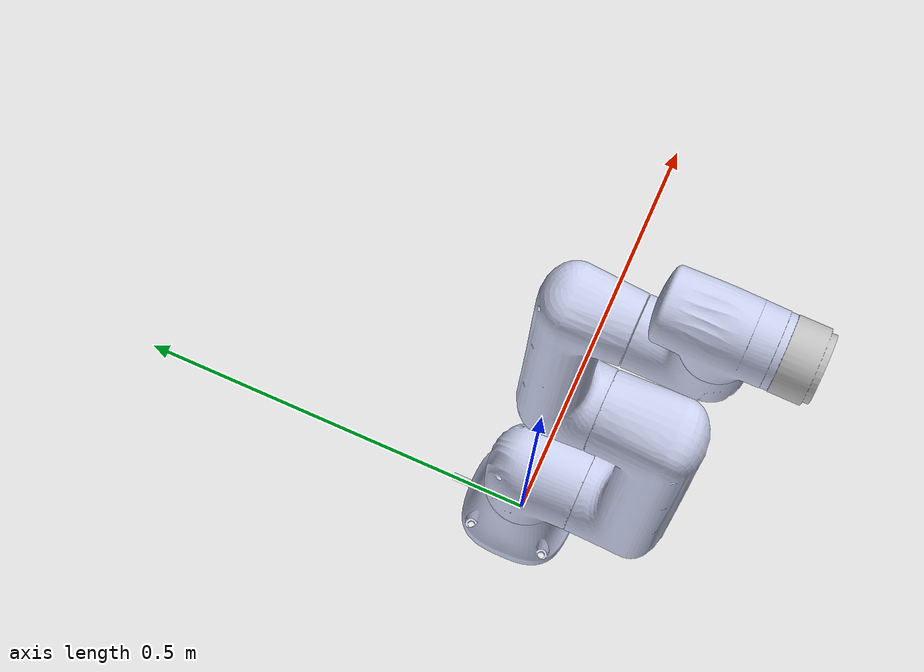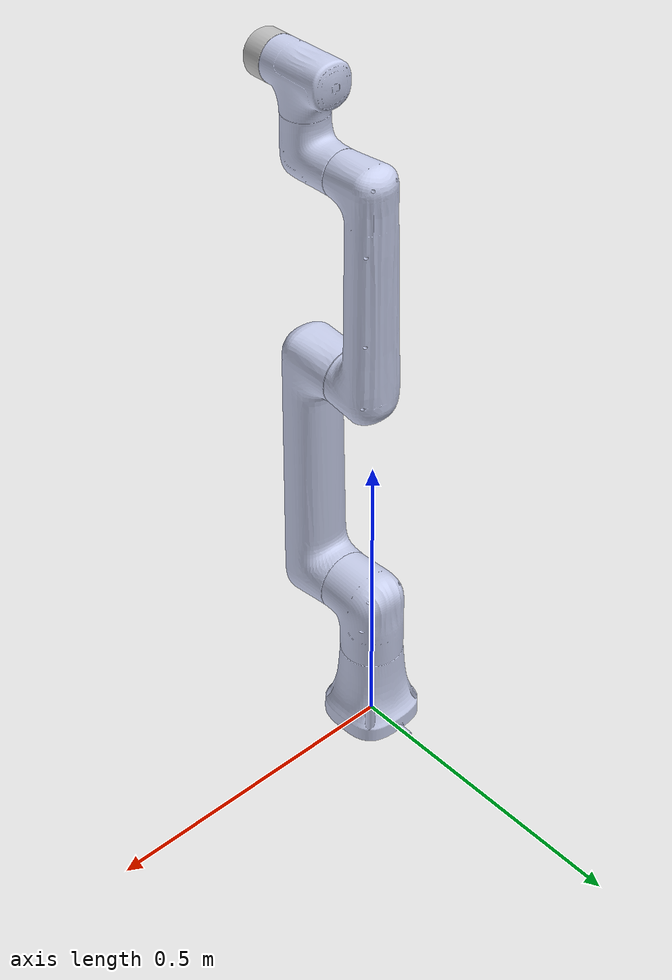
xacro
<?xml version="1.0"?>
<robot
  name="nova5_robot" xmlns:xacro="http://www.ros.org/wiki/xacro" >
  <link name="dummy_link"/>
  <link
    name="base_link">
    <inertial>
      <origin
        xyz="6.56698714338847E-06 2.73052159273858E-06 0.0698223124889706"
        rpy="0 0 0" />
      <mass
        value="1.3106443915978" />
      <inertia
        ixx="0.00308109148952278"
        ixy="-4.0369958400766E-08"
        ixz="5.2607663395944E-07"
        iyy="0.00309758743296662"
        iyz="-6.37484696538659E-09"
        izz="0.00232835367593981" />
    </inertial>
    <visual>
      <origin
        xyz="0 0 0"
        rpy="0 0 0" />
      <geometry>
        <mesh
          filename="file://$(find cra_description)/meshes/nova5/base_link.STL" />
      </geometry>
      <material
        name="">
        <color
          rgba="0.792156862745098 0.819607843137255 0.933333333333333 1" />
      </material>
    </visual>
    <collision>
      <origin
        xyz="0 0 0"
        rpy="0 0 0" />
      <geometry>
        <mesh
          filename="file://$(find cra_description)/meshes/nova5/base_link.STL" />
      </geometry>
    </collision>
  </link>
  <link  name="world"/>
  <joint name="world_joint" type="fixed">
    <parent link="world" />
    <child  link="dummy_link" />
  </joint>
  <joint
    name="dummy_joint"
    type="fixed">
    <parent
      link="dummy_link" />
    <child
      link="base_link" />
  </joint>
  <link
    name="Link1">
    <inertial>
      <origin
        xyz="9.18642704220017E-06 -0.021770784235076 -0.0261833991373472"
        rpy="0 0 0" />
      <mass
        value="1.08090940330212" />
      <inertia
        ixx="0.00265963193119309"
        ixy="1.85196348994647E-07"
        ixz="-3.27720040926316E-07"
        iyy="0.00247342331575097"
        iyz="0.000661331129337329"
        izz="0.00164737186015792" />
    </inertial>
    <visual>
      <origin
        xyz="0 0 0"
        rpy="0 0 0" />
      <geometry>
        <mesh
          filename="file://$(find cra_description)/meshes/nova5/Link1.STL" />
      </geometry>
      <material
        name="">
        <color
          rgba="0.792156862745098 0.819607843137255 0.933333333333333 1" />
      </material>
    </visual>
    <collision>
      <origin
        xyz="0 0 0"
        rpy="0 0 0" />
      <geometry>
        <mesh
          filename="file://$(find cra_description)/meshes/nova5/Link1.STL" />
      </geometry>
    </collision>
  </link>
  <joint
    name="joint1"
    type="revolute">
    <origin
      xyz="0 0 0.240000000000178"
      rpy="0 0 0" />
    <parent
      link="base_link" />
    <child
      link="Link1" />
    <axis
      xyz="0 0 0.999999999999855" />
    <limit
      lower="-6.28"
      upper="6.28"
      effort="300"
      velocity="3.14" />
  </joint>
  <link
    name="Link2">
    <inertial>
      <origin
        xyz="-0.19933810729628 -0.00696463483971123 0.109208661556353"
        rpy="0 0 0" />
      <mass
        value="2.54585370113969" />
      <inertia
        ixx="0.00285193319464959"
        ixy="-0.00212784400881843"
        ixz="-0.00109906472415148"
        iyy="0.0636767872390402"
        iyz="-3.83872488712299E-05"
        izz="0.0643005121111712" />
    </inertial>
    <visual>
      <origin
        xyz="0 0 0"
        rpy="0 0 0" />
      <geometry>
        <mesh
          filename="file://$(find cra_description)/meshes/nova5/Link2.STL" />
      </geometry>
      <material
        name="">
        <color
          rgba="0.792156862745098 0.819607843137255 0.933333333333333 1" />
      </material>
    </visual>
    <collision>
      <origin
        xyz="0 0 0"
        rpy="0 0 0" />
      <geometry>
        <mesh
          filename="file://$(find cra_description)/meshes/nova5/Link2.STL" />
      </geometry>
    </collision>
  </link>
  <joint
    name="joint2"
    type="revolute">
    <origin
      xyz="0 0 0"
      rpy="-1.57080287682252 1.53586622836832 3.14159265358979" />
    <parent
      link="Link1" />
    <child
      link="Link2" />
    <axis
      xyz="0 0 1" />
    <limit
      lower="-3.14"
      upper="3.14"
      effort="300"
      velocity="3.14" />
  </joint>
  <link
    name="Link3">
    <inertial>
      <origin
        xyz="-0.152357289724291 -0.0053571688729055 0.0198991511385547"
        rpy="0 0 0" />
      <mass
        value="1.40745649848125" />
      <inertia
        ixx="0.00100801309674517"
        ixy="-0.00077546601599374"
        ixz="4.43267247578911E-05"
        iyy="0.0231741793950995"
        iyz="1.31338010910521E-06"
        izz="0.02359962285525" />
    </inertial>
    <visual>
      <origin
        xyz="0 0 0"
        rpy="0 0 0" />
      <geometry>
        <mesh
          filename="file://$(find cra_description)/meshes/nova5/Link3.STL" />
      </geometry>
      <material
        name="">
        <color
          rgba="0.792156862745098 0.819607843137255 0.933333333333333 1" />
      </material>
    </visual>
    <collision>
      <origin
        xyz="0 0 0"
        rpy="0 0 0" />
      <geometry>
        <mesh
          filename="file://$(find cra_description)/meshes/nova5/Link3.STL" />
      </geometry>
    </collision>
  </link>
  <joint
    name="joint3"
    type="revolute">
    <origin
      xyz="-0.399756009268664 -0.0139690033141953 0"
      rpy="0 0 0" />
    <parent
      link="Link2" />
    <child
      link="Link3" />
    <axis
      xyz="0 0 1" />
    <limit
      lower="-2.79"
      upper="2.79"
      effort="300"
      velocity="3.14" />
  </joint>
  <link
    name="Link4">
    <inertial>
      <origin
        xyz="-6.37112093033953E-06 -0.0227590499933018 -0.0202381689250349"
        rpy="0 0 0" />
      <mass
        value="0.439666284541787" />
      <inertia
        ixx="0.000634738696193051"
        ixy="1.33529119545257E-08"
        ixz="2.91412587537874E-08"
        iyy="0.00045014395177395"
        iyz="0.000210919680187578"
        izz="0.000480311391216564" />
    </inertial>
    <visual>
      <origin
        xyz="0 0 0"
        rpy="0 0 0" />
      <geometry>
        <mesh
          filename="file://$(find cra_description)/meshes/nova5/Link4.STL" />
      </geometry>
      <material
        name="">
        <color
          rgba="0.792156862745098 0.819607843137255 0.933333333333333 1" />
      </material>
    </visual>
    <collision>
      <origin
        xyz="0 0 0"
        rpy="0 0 0" />
      <geometry>
        <mesh
          filename="file://$(find cra_description)/meshes/nova5/Link4.STL" />
      </geometry>
    </collision>
  </link>
  <joint
    name="joint4"
    type="revolute">
    <origin
      xyz="-0.329798707647103 -0.0115244277211674 0.134999532858734"
      rpy="0 0 -1.53586622840712" />
    <parent
      link="Link3" />
    <child
      link="Link4" />
    <axis
      xyz="0 0 1" />
    <limit
      lower="-6.28"
      upper="6.28"
      effort="300"
      velocity="3.14" />
  </joint>
  <link
    name="Link5">
    <inertial>
      <origin
        xyz="-1.27925890990664E-06 0.00190911597991161 -0.0076111865696753"
        rpy="0 0 0" />
      <mass
        value="0.574835130260071" />
      <inertia
        ixx="0.000663176880523558"
        ixy="1.30179448329138E-08"
        ixz="1.22670358756949E-08"
        iyy="0.000397520749670404"
        iyz="-0.00012026389265228"
        izz="0.000641156648195347" />
    </inertial>
    <visual>
      <origin
        xyz="0 0 0"
        rpy="0 0 0" />
      <geometry>
        <mesh
          filename="file://$(find cra_description)/meshes/nova5/Link5.STL" />
      </geometry>
      <material
        name="">
        <color
          rgba="0.792156862745098 0.819607843137255 0.933333333333333 1" />
      </material>
    </visual>
    <collision>
      <origin
        xyz="0 0 0"
        rpy="0 0 0" />
      <geometry>
        <mesh
          filename="file://$(find cra_description)/meshes/nova5/Link5.STL" />
      </geometry>
    </collision>
  </link>
  <joint
    name="joint5"
    type="revolute">
    <origin
      xyz="0 -0.12 0"
      rpy="1.5708 0 0" />
    <parent
      link="Link4" />
    <child
      link="Link5" />
    <axis
      xyz="0 0 1" />
    <limit
      lower="-6.28"
      upper="6.28"
      effort="300"
      velocity="3.14" />
  </joint>
  <link
    name="Link6">
    <inertial>
      <origin
        xyz="1.5476173180832E-06 0.000151598525687691 -0.0194592287865595"
        rpy="0 0 0" />
      <mass
        value="0.129679940383395" />
      <inertia
        ixx="5.02803124561327E-05"
        ixy="6.27222112028976E-11"
        ixz="3.5128727780266E-12"
        iyy="5.05400746124736E-05"
        iyz="5.0343678900728E-08"
        izz="7.7863015024978E-05" />
    </inertial>
    <visual>
      <origin
        xyz="0 0 0"
        rpy="0 0 0" />
      <geometry>
        <mesh
          filename="file://$(find cra_description)/meshes/nova5/Link6.STL" />
      </geometry>
      <material
        name="">
        <color
          rgba="0.752941176470588 0.752941176470588 0.752941176470588 1" />
      </material>
    </visual>
    <collision>
      <origin
        xyz="0 0 0"
        rpy="0 0 0" />
      <geometry>
        <mesh
          filename="file://$(find cra_description)/meshes/nova5/Link6.STL" />
      </geometry>
    </collision>
  </link>
  <joint
    name="joint6"
    type="revolute">
    <origin
      xyz="0 0.088328 0"
      rpy="-1.5708 0 0" />
    <parent
      link="Link5" />
    <child
      link="Link6" />
    <axis
      xyz="0 0 1" />
    <limit
      lower="-6.28"
      upper="6.28"
      effort="300"
      velocity="3.14" />
  </joint>
   <gazebo reference="base_link">
        <gravity>false</gravity>
        <selfCollide>true</selfCollide>
    </gazebo>
    <gazebo reference="Link1">
        <gravity>false</gravity>
        <selfCollide>true</selfCollide>
    </gazebo>
    <gazebo reference="Link2">
        <gravity>false</gravity>
        <selfCollide>true</selfCollide>
    </gazebo>
    <gazebo reference="Link3">
        <gravity>false</gravity>
        <selfCollide>true</selfCollide>
    </gazebo>
    <gazebo reference="Link4">
        <gravity>false</gravity>
        <selfCollide>true</selfCollide>
    </gazebo>
    <gazebo reference="Link5">
        <gravity>false</gravity>
        <selfCollide>true</selfCollide>
    </gazebo>
    <gazebo reference="Link6">
        <gravity>false</gravity>
        <selfCollide>true</selfCollide>
    </gazebo>
    <!-- 在运行demo.launch.py时，需要注释这个ros2_control节点，因为它使用了xxx.ros2_control.xacro来生成了ros2_control节点-->
    <ros2_control name="GazeboSystem" type="system">
        <hardware>
            <plugin>gz_ros2_control/GazeboSimSystem</plugin>
        </hardware>
        <joint name="joint1">
            <command_interface name="position">
                <param name="min">-1</param>
                <param name="max">1</param>
            </command_interface>
            <state_interface name="position">
                <param name="initial_value">0.0</param>
            </state_interface>
            <state_interface name="velocity"/>
        </joint>
        <joint name="joint2">
            <command_interface name="position">
                <param name="min">-1</param>
                <param name="max">1</param>
            </command_interface>
            <state_interface name="position">
                <param name="initial_value">0.0</param>
            </state_interface>
            <state_interface name="velocity"/>
        </joint>
        <joint name="joint3">
            <command_interface name="position">
                <param name="min">-1</param>
                <param name="max">1</param>
            </command_interface>
            <state_interface name="position">
                <param name="initial_value">0.0</param>
            </state_interface>
            <state_interface name="velocity"/>
        </joint>
        <joint name="joint4">
            <command_interface name="position">
                <param name="min">-1</param>
                <param name="max">1</param>
            </command_interface>
            <state_interface name="position">
                <param name="initial_value">0.0</param>
            </state_interface>
            <state_interface name="velocity"/>
        </joint>
        <joint name="joint5">
            <command_interface name="position">
                <param name="min">-1</param>
                <param name="max">1</param>
            </command_interface>
            <state_interface name="position">
                <param name="initial_value">0.0</param>
            </state_interface>
            <state_interface name="velocity"/>
        </joint>
        <joint name="joint6">
            <command_interface name="position">
                <param name="min">-1</param>
                <param name="max">1</param>
            </command_interface>
            <state_interface name="position">
                <param name="initial_value">0.0</param>
            </state_interface>
            <state_interface name="velocity"/>
        </joint>
    </ros2_control>

    <gazebo>
        <plugin filename="gz_ros2_control-system" name="gz_ros2_control::GazeboSimROS2ControlPlugin">
            <parameters> $(find nova5_moveit)/config/ros2_controllers.yaml</parameters>
            <robot_param_node>robot_state_publisher</robot_param_node>
        </plugin>
    </gazebo>

</robot>
